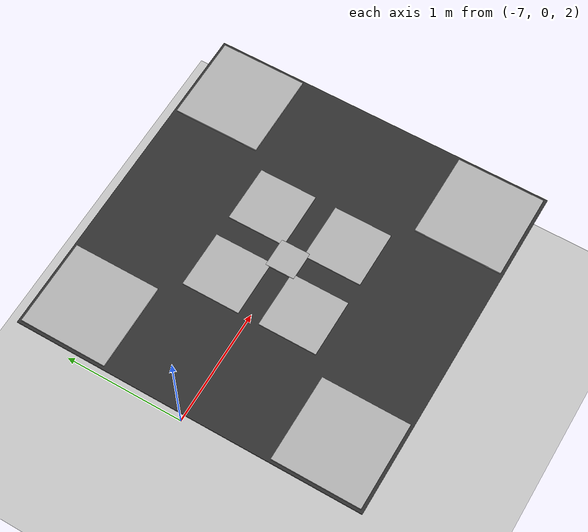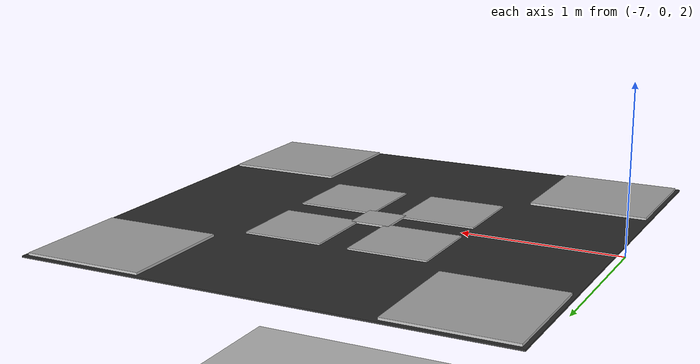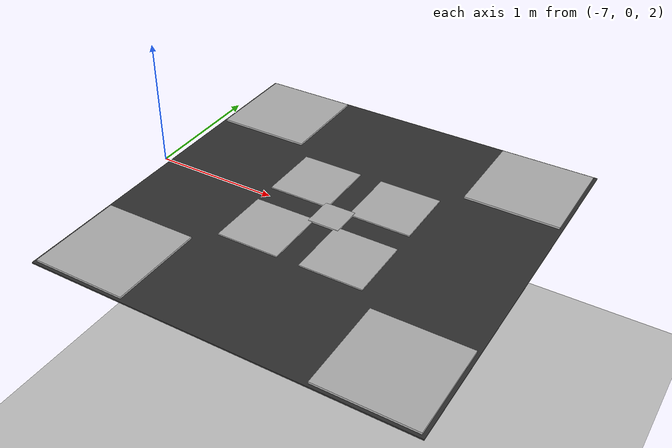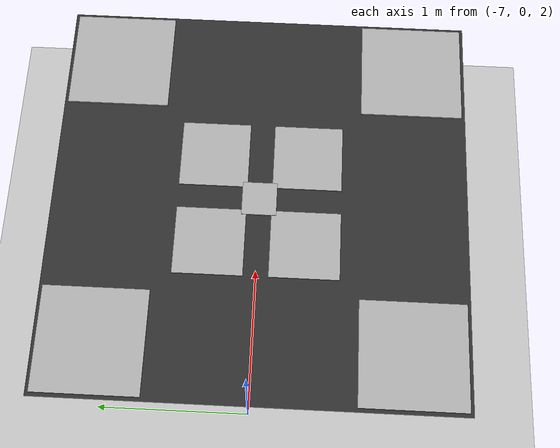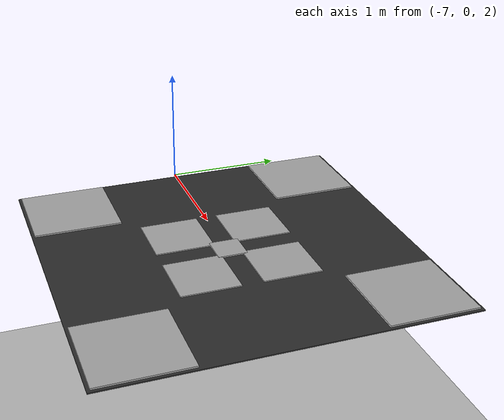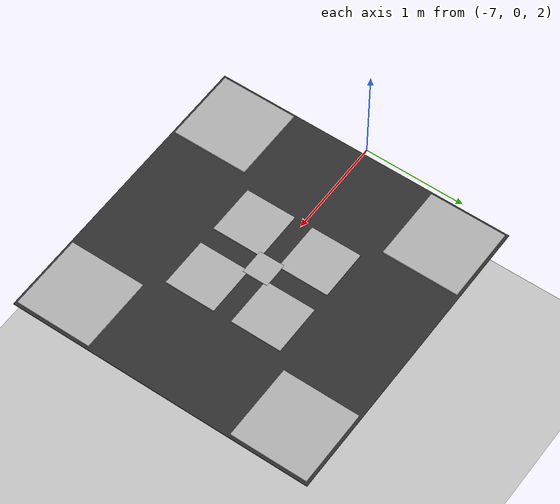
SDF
<?xml version="1.0" encoding="UTF-8"?>
<sdf version="1.9">
  <world name="windy_default">
    <physics type="ode">
      <max_step_size>0.004</max_step_size>
      <real_time_factor>1.0</real_time_factor>
      <real_time_update_rate>250</real_time_update_rate>
    </physics>
    <gravity>0 0 -9.8</gravity>
    <magnetic_field>6e-06 2.3e-05 -4.2e-05</magnetic_field>
    <atmosphere type="adiabatic"/>
    <scene>
      <grid>false</grid>
      <ambient>0.4 0.4 0.4 1</ambient>
      <background>0.7 0.7 0.7 1</background>
      <shadows>true</shadows>
    </scene>
    <model name="ground_plane">
      <static>true</static>
      <link name="link">
        <collision name="collision">
          <geometry>
            <plane>
              <normal>0 0 1</normal>
              <size>1 1</size>
            </plane>
          </geometry>
          <surface>
            <friction>
              <ode/>
            </friction>
            <bounce/>
            <contact/>
          </surface>
        </collision>
        <visual name="visual">
          <geometry>
            <plane>
              <normal>0 0 1</normal>
              <size>500 500</size>
            </plane>
          </geometry>
          <material>
            <ambient>0.8 0.8 0.8 1</ambient>
            <diffuse>0.8 0.8 0.8 1</diffuse>
            <specular>0.8 0.8 0.8 1</specular>
          </material>
        </visual>
        <pose>0 0 0 0 -0 0</pose>
        <inertial>
          <pose>0 0 0 0 -0 0</pose>
          <mass>1</mass>
          <inertia>
            <ixx>1</ixx>
            <ixy>0</ixy>
            <ixz>0</ixz>
            <iyy>1</iyy>
            <iyz>0</iyz>
            <izz>1</izz>
          </inertia>
        </inertial>
        <enable_wind>false</enable_wind>
      </link>
      <pose>0 0 0 0 -0 0</pose>
      <self_collide>false</self_collide>

    </model>
    <light name="sunUTC" type="directional">
      <pose>0 0 500 0 -0 0</pose>
      <cast_shadows>true</cast_shadows>
      <intensity>1</intensity>
      <direction>0.001 0.625 -0.78</direction>
      <diffuse>0.904 0.904 0.904 1</diffuse>
      <specular>0.271 0.271 0.271 1</specular>
      <attenuation>
        <range>2000</range>
        <linear>0</linear>
        <constant>1</constant>
        <quadratic>0</quadratic>
      </attenuation>
      <spot>
        <inner_angle>0</inner_angle>
        <outer_angle>0</outer_angle>
        <falloff>0</falloff>
      </spot>
    </light>
     <include>
    <uri>model://aruco_pad</uri>
      <name>aruco_pad</name>
      <pose>-5.45 0.0 2.0 0.0 0.0 0.0</pose>
      <plugin name="gz::sim::systems::PosePublisher" filename="libgz-sim-pose-publisher-system.so">
        <publish_link_pose>true</publish_link_pose>
          <publish_model_pose>true</publish_model_pose>
          <publish_nested_model_pose>true</publish_nested_model_pose>
          <publish_world_pose>true</publish_world_pose>
          <update_rate>30</update_rate>
      </plugin>
      <plugin
      filename="gz-sim-wind-effects-system"
      name="gz::sim::systems::WindEffects">

      <horizontal>
        <magnitude>
          <time_for_rise>1.0</time_for_rise>
          <sin>
            <amplitude_percent>0.15</amplitude_percent>
            <period>5.0</period>
          </sin>
          <noise type="gaussian">
            <mean>0</mean>
            <stddev>1.0</stddev>
          </noise>
        </magnitude>

        <direction>
          <time_for_rise>2.0</time_for_rise>
          <sin>
            <amplitude>0.5</amplitude>
            <period>5.0</period>
          </sin>
          <noise type="gaussian">
            <mean>0</mean>
            <stddev>0.05</stddev>
          </noise>
        </direction>
      </horizontal>

      <vertical>
        <time_for_rise>1.0</time_for_rise>
        <noise type="gaussian">
          <mean>0</mean>
          <stddev>0.1</stddev>
        </noise>
      </vertical>

      <force_approximation_scaling_factor>1.0</force_approximation_scaling_factor>
    </plugin>
    </include>
    <wind>
      <linear_velocity>10 10 0</linear_velocity>
    </wind>

    <spherical_coordinates>
      <surface_model>EARTH_WGS84</surface_model>
      <world_frame_orientation>ENU</world_frame_orientation>
      <latitude_deg>47.397971057728974</latitude_deg>
      <longitude_deg> 8.546163739800146</longitude_deg>
      <elevation>0</elevation>
    </spherical_coordinates>
  </world>
</sdf>

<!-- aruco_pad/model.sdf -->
<sdf version="1.9">
  <model name="aruco_pad">
    <static>true</static>
    <link name="base_link">
      <collision name="pad_collision_surface">
        <geometry>
          <box>
            <size>3.0 3.0 0.1</size>
          </box>
        </geometry>
        <surface>
          <friction>
            <ode>
              <mu>100.0</mu> <mu2>100.0</mu2> </ode>
          </friction>
          <contact>
            <ode>
              <kp>1000000.0</kp> <kd>1.0</kd> </ode>
          </contact>
        </surface>
      </collision>
      <visual name="visual_base">
        <geometry>
          <box>
            <size>3.0 3.0 0.01</size>
          </box>
        </geometry>
        <material>
          <ambient>0.2 0.2 0.2 1</ambient>
          <ambient>0.2 0.2 0.2 1</ambient>
          <diffuse>0.2 0.2 0.2 1</diffuse>
        </material>
      </visual>

      <sensor name="navsat_sensor" type="navsat">
        <always_on>1</always_on>
        <update_rate>30</update_rate>
        <noise>
            <type>gaussian</type>
            <mean>0.0</mean>
            <stddev>0.0</stddev>
          </noise>
      </sensor>
      <sensor name="imu_sensor" type="imu">
            <gz_frame_id>base_link</gz_frame_id>
            <always_on>1</always_on>
            <update_rate>250</update_rate>
            <imu>
              <angular_velocity>
                <x>
                  <noise type="gaussian">
                    <mean>0</mean>
                    <stddev>0.0003394</stddev>
                    <dynamic_bias_stddev>3.8785e-05</dynamic_bias_stddev>
                    <dynamic_bias_correlation_time>1000</dynamic_bias_correlation_time>
                  </noise>
                </x>
                <y>
                  <noise type="gaussian">
                    <mean>0</mean>
                    <stddev>0.0003394</stddev>
                    <dynamic_bias_stddev>3.8785e-05</dynamic_bias_stddev>
                    <dynamic_bias_correlation_time>1000</dynamic_bias_correlation_time>
                  </noise>
                </y>
                <z>
                  <noise type="gaussian">
                    <mean>0</mean>
                    <stddev>0.0003394</stddev>
                    <dynamic_bias_stddev>3.8785e-05</dynamic_bias_stddev>
                    <dynamic_bias_correlation_time>1000</dynamic_bias_correlation_time>
                  </noise>
                </z>
              </angular_velocity>
              <linear_acceleration>
                <x>
                  <noise type="gaussian">
                    <mean>0</mean>
                    <stddev>0.004</stddev>
                    <dynamic_bias_stddev>0.006</dynamic_bias_stddev>
                    <dynamic_bias_correlation_time>300</dynamic_bias_correlation_time>
                  </noise>
                </x>
                <y>
                  <noise type="gaussian">
                    <mean>0</mean>
                    <stddev>0.004</stddev>
                    <dynamic_bias_stddev>0.006</dynamic_bias_stddev>
                    <dynamic_bias_correlation_time>300</dynamic_bias_correlation_time>
                  </noise>
                </y>
                <z>
                  <noise type="gaussian">
                    <mean>0</mean>
                    <stddev>0.004</stddev>
                    <dynamic_bias_stddev>0.006</dynamic_bias_stddev>
                    <dynamic_bias_correlation_time>300</dynamic_bias_correlation_time>
                  </noise>
                </z>
              </linear_acceleration>
            </imu>
          </sensor>
      <sensor name="air_pressure_sensor" type="air_pressure">
        <gz_frame_id>base_link</gz_frame_id>
        <always_on>1</always_on>
        <update_rate>50</update_rate>
        <air_pressure>
          <pressure>
            <noise type="gaussian">
              <mean>0</mean>
              <stddev>0.01</stddev>
            </noise>
          </pressure>
        </air_pressure>
      </sensor>
      <sensor name="magnetometer_sensor" type="magnetometer">
        <gz_frame_id>base_link</gz_frame_id>
        <always_on>1</always_on>
        <update_rate>100</update_rate>
        <magnetometer>
          <!-- TODO: update to fix units and coordinate system when we move past Harmonic -->
          <!-- See https://github.com/gazebosim/gz-sim/pull/2460 -->
          <!-- 3mgauss RMS: NOTE: noise is in tesla but sensor reports data in gauss -->
          <!-- Noise modeled after IIS2MDC -->
          <x>
            <noise type="gaussian">
              <stddev>0.0001</stddev>
            </noise>
          </x>
          <y>
            <noise type="gaussian">
              <stddev>0.0001</stddev>
            </noise>
          </y>
          <z>
            <noise type="gaussian">
              <stddev>0.0001</stddev>
            </noise>
          </z>
        </magnetometer>
      </sensor>

    </link>
    <link name='lf_wheel_link'>
      <pose>0.15 0.16317 0.0215 0 -0 0</pose>
      <inertial>
        <pose>0 0 0 1.57079632679 0 0</pose>
        <mass>0.414</mass>
        <inertia>
          <ixx>0.00068682</ixx>
          <ixy>0</ixy>
          <ixz>0</ixz>
          <iyy>0.00068682</iyy>
          <iyz>0</iyz>
          <izz>0.00097299</izz>
        </inertia>
      </inertial>
      <velocity_decay />
    </link>
    <link name='lb_wheel_link'>
      <pose>-0.15 0.16317 0.0215 0 -0 0</pose>
      <inertial>
        <pose>0 0 0 1.57079632679 0 0</pose>
        <mass>0.414</mass>
        <inertia>
          <ixx>0.00068682</ixx>
          <ixy>0</ixy>
          <ixz>0</ixz>
          <iyy>0.00068682</iyy>
          <iyz>0</iyz>
          <izz>0.00097299</izz>
        </inertia>
      </inertial>
      <velocity_decay />
    </link>
    <link name='rf_wheel_link'>
      <pose>0.15 -0.16317 0.0215 0 -0 0</pose>
      <inertial>
        <pose>0 0 0 1.57079632679 0 0</pose>
        <mass>0.414</mass>
        <inertia>
          <ixx>0.00068682</ixx>
          <ixy>0</ixy>
          <ixz>0</ixz>
          <iyy>0.00068682</iyy>
          <iyz>0</iyz>
          <izz>0.00097299</izz>
        </inertia>
      </inertial>
      <velocity_decay />
    </link>
    <link name='rb_wheel_link'>
      <pose>-0.15 -0.16317 0.0215 0 -0 0</pose>
      <inertial>
        <pose>0 0 0 1.57079632679 0 0</pose>
        <mass>0.414</mass>
        <inertia>
          <ixx>0.00068682</ixx>
          <ixy>0</ixy>
          <ixz>0</ixz>
          <iyy>0.00068682</iyy>
          <iyz>0</iyz>
          <izz>0.00097299</izz>
        </inertia>
      </inertial>
      <velocity_decay />
    </link>
    <joint name='motor_0' type='revolute'>
      <child>lf_wheel_link</child>
      <parent>base_link</parent>
      <axis>
        <xyz>0 1 0</xyz>
        <limit>
          <lower>-1e+16</lower>
          <upper>1e+16</upper>
        </limit>
        <dynamics>
          <spring_reference>0</spring_reference>
          <spring_stiffness>0</spring_stiffness>
        </dynamics>
        <use_parent_model_frame>1</use_parent_model_frame>
      </axis>
    </joint>
    <joint name='motor_1' type='revolute'>
      <child>lb_wheel_link</child>
      <parent>base_link</parent>
      <axis>
        <xyz>0 1 0</xyz>
        <limit>
          <lower>-1e+16</lower>
          <upper>1e+16</upper>
        </limit>
        <dynamics>
          <spring_reference>0</spring_reference>
          <spring_stiffness>0</spring_stiffness>
        </dynamics>
        <use_parent_model_frame>1</use_parent_model_frame>
      </axis>
    </joint>
    <joint name='motor_2' type='revolute'>
      <child>rf_wheel_link</child>
      <parent>base_link</parent>
      <axis>
        <xyz>0 1 0</xyz>
        <limit>
          <lower>-1e+16</lower>
          <upper>1e+16</upper>
        </limit>
        <dynamics>
          <spring_reference>0</spring_reference>
          <spring_stiffness>0</spring_stiffness>
        </dynamics>
        <use_parent_model_frame>1</use_parent_model_frame>
      </axis>
    </joint>
    <joint name='motor_3' type='revolute'>
      <child>rb_wheel_link</child>
      <parent>base_link</parent>
      <axis>
        <xyz>0 1 0</xyz>
        <limit>
          <lower>-1e+16</lower>
          <upper>1e+16</upper>
        </limit>
        <dynamics>
          <spring_reference>0</spring_reference>
          <spring_stiffness>0</spring_stiffness>
        </dynamics>
        <use_parent_model_frame>1</use_parent_model_frame>
      </axis>
    </joint>

    <include>
      <uri>model://aruco_sticker1</uri>
      <name>marker_1</name>
      <pose>1.1 1.1 0.01 0 0 0</pose>
    </include>
    <include>
      <uri>model://aruco_sticker2</uri>
      <name>marker_2</name>
      <pose>1.1 -1.1 0.01 0 0 0</pose>
    </include>
    <include>
      <uri>model://aruco_sticker3</uri>
      <name>marker_3</name>
      <pose>-1.1 1.1 0.01 0 0 0</pose>
    </include>
    <include>
      <uri>model://aruco_sticker4</uri>
      <name>marker_4</name>
      <pose>-1.1 -1.1 0.01 0 0 0</pose>
    </include>

    <include>
      <uri>model://aruco_sticker5</uri>
      <name>marker_5</name>
      <pose>0.34 0.34 0.005 0 0 0</pose>
    </include>
    <include>
      <uri>model://aruco_sticker6</uri>
      <name>marker_6</name>
      <pose>0.34 -0.34 0.005 0 0 0</pose>
    </include>
    <include>
      <uri>model://aruco_sticker7</uri>
      <name>marker_7</name>
      <pose>-0.34 0.34 0.005 0 0 0</pose>
    </include>
    <include>
      <uri>model://aruco_sticker8</uri>
      <name>marker_8</name>
      <pose>-0.34 -0.34 0.005 0 0 0</pose>
    </include>

    <include>
      <uri>model://aruco_sticker9</uri>
      <name>marker_9</name>
      <pose>0 0 0.012 0 0 0</pose>
    </include>
    <!-- 1. The Sensor: Detects the touch -->
    <plugin
      filename="libtouch_plugin_mod.so"
      name="gz::sim::systems::TouchPluginMod">
      <target>x500</target>
      <namespace>pad</namespace>
      <link_name>base_link</link_name>
      <time>0.1</time>
      <enabled>true</enabled>
      <create_contact_sensor_for_collision>true</create_contact_sensor_for_collision>
    </plugin>

    <!-- 2. The Magnet: Creates the joint -->
    <plugin
      filename="libdetachable_joint_mod.so"
      name="gz::sim::systems::DetachableJointMod">
      <parent_link>base_link</parent_link>
      <child_model>x500_mono_cam_down_0</child_model>
      <child_link>base_link</child_link>
      <attach_topic>/pad/touched</attach_topic>
      <topic>/pad/dettach</topic>
      <detach_topic>/pad/dettach</detach_topic>
    </plugin>

   <plugin
        filename="libwave_motion_plugin2.so"
        name="gz::sim::systems::WavePlatformPlugin2">

        <surge_a1>1.0</surge_a1>
        <surge_p1>12.0</surge_p1>

        <heave_a1>0.5</heave_a1>
        <heave_p1>30</heave_p1>

        <heave_a2>0.2</heave_a2>
        <heave_p2>10.0</heave_p2>

        <heave_a3>1.0</heave_a3>
        <heave_p3>4.0</heave_p3>

        <roll_a1>11.0</roll_a1>
        <pitch_a1>3.1</pitch_a1>
        <yaw_a1>2.14</yaw_a1>

      </plugin>

    <plugin filename="gz-sim-joint-controller-system" name="gz::sim::systems::JointController">
      <joint_name>motor_0</joint_name>
      <sub_topic>command/motor_speed</sub_topic>
      <use_actuator_msg>true</use_actuator_msg>
      <actuator_number>1</actuator_number>
      <p_gain>10.0</p_gain>
    </plugin>
    <plugin filename="gz-sim-joint-controller-system" name="gz::sim::systems::JointController">
      <joint_name>motor_1</joint_name>
      <sub_topic>command/motor_speed</sub_topic>
      <use_actuator_msg>true</use_actuator_msg>
      <actuator_number>1</actuator_number>
      <p_gain>10.0</p_gain>
    </plugin>
    <plugin filename="gz-sim-joint-controller-system" name="gz::sim::systems::JointController">
      <joint_name>motor_2</joint_name>
      <sub_topic>command/motor_speed</sub_topic>
      <use_actuator_msg>true</use_actuator_msg>
      <actuator_number>0</actuator_number>
      <p_gain>10.0</p_gain>
    </plugin>
    <plugin filename="gz-sim-joint-controller-system" name="gz::sim::systems::JointController">
      <joint_name>motor_3</joint_name>
      <sub_topic>command/motor_speed</sub_topic>
      <use_actuator_msg>true</use_actuator_msg>
      <actuator_number>0</actuator_number>
      <p_gain>10.0</p_gain>
    </plugin>
    <plugin
      filename="gz-sim-joint-state-publisher-system"
      name="gz::sim::systems::JointStatePublisher">
      <joint_name>motor_0</joint_name>
      <joint_name>motor_1</joint_name>
      <joint_name>motor_2</joint_name>
      <joint_name>motor_3</joint_name>
    </plugin>

  </model>
</sdf>

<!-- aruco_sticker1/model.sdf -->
<sdf version="1.5">

 <model name='aruco_sticker1'>
      <pose>0 0 0 0 0 0</pose>
      <link name='link'>
        <inertial>
          <mass>1</mass>
          <inertia>
            <ixx>0.166667</ixx>
            <ixy>0</ixy>
            <ixz>0</ixz>
            <iyy>0.166667</iyy>
            <iyz>0</iyz>
            <izz>0.0166667</izz>
          </inertia>
          <pose>0 0 0 0 -0 0</pose>
        </inertial>
        <gravity>0</gravity>
        <kinematic>true</kinematic>
        <visual name='aruco_box_mesh'>
          <geometry>
            <mesh>
                <uri>model://aruco_sticker1/model.dae</uri>
                <scale>0.375 0.375 0.01</scale>
            </mesh>
          </geometry>
        </visual>
        <self_collide>0</self_collide>
        <enable_wind>0</enable_wind>
        <kinematic>0</kinematic>
      </link>
    </model>
</sdf>

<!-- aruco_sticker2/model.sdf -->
<sdf version="1.5">

 <model name='aruco_sticker2'>
      <pose>0 0 0 0 0 0</pose>
      <link name='link'>
        <inertial>
          <mass>1</mass>
          <inertia>
            <ixx>0.166667</ixx>
            <ixy>0</ixy>
            <ixz>0</ixz>
            <iyy>0.166667</iyy>
            <iyz>0</iyz>
            <izz>0.0166667</izz>
          </inertia>
          <pose>0 0 0 0 -0 0</pose>
        </inertial>
        <gravity>0</gravity>
        <kinematic>true</kinematic>
        <visual name='aruco_box_mesh'>
          <geometry>
            <mesh>
                <uri>model://aruco_sticker2/model.dae</uri>
                <scale>0.375 0.375 0.01</scale>
            </mesh>
          </geometry>
        </visual>
        <self_collide>0</self_collide>
        <enable_wind>0</enable_wind>
        <kinematic>0</kinematic>
      </link>
    </model>
</sdf>

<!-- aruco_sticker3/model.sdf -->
<sdf version="1.5">

 <model name='aruco_sticker3'>
      <pose>0 0 0 0 0 0</pose>
      <link name='link'>
        <inertial>
          <mass>1</mass>
          <inertia>
            <ixx>0.166667</ixx>
            <ixy>0</ixy>
            <ixz>0</ixz>
            <iyy>0.166667</iyy>
            <iyz>0</iyz>
            <izz>0.0166667</izz>
          </inertia>
          <pose>0 0 0 0 -0 0</pose>
        </inertial>
        <gravity>0</gravity>
        <kinematic>true</kinematic>
        <visual name='aruco_box_mesh'>
          <geometry>
            <mesh>
                <uri>model://aruco_sticker3/model.dae</uri>
                <scale>0.375 0.375 0.01</scale>
            </mesh>
          </geometry>
        </visual>
        <self_collide>0</self_collide>
        <enable_wind>0</enable_wind>
        <kinematic>0</kinematic>
      </link>
    </model>
</sdf>

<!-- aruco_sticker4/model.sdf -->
<sdf version="1.5">

 <model name='aruco_sticker4'>
      <pose>0 0 0 0 0 0</pose>
      <link name='link'>
        <inertial>
          <mass>1</mass>
          <inertia>
            <ixx>0.166667</ixx>
            <ixy>0</ixy>
            <ixz>0</ixz>
            <iyy>0.166667</iyy>
            <iyz>0</iyz>
            <izz>0.0166667</izz>
          </inertia>
          <pose>0 0 0 0 -0 0</pose>
        </inertial>
        <gravity>0</gravity>
        <kinematic>true</kinematic>
        <visual name='aruco_box_mesh'>
          <geometry>
            <mesh>
                <uri>model://aruco_sticker4/model.dae</uri>
                <scale>0.375 0.375 0.01</scale>
            </mesh>
          </geometry>
        </visual>
        <self_collide>0</self_collide>
        <enable_wind>0</enable_wind>
        <kinematic>0</kinematic>
      </link>
    </model>
</sdf>

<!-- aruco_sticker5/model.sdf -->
<sdf version="1.5">

 <model name='aruco_sticker5'>
      <pose>0 0 0 0 0 0</pose>
      <link name='link'>
        <inertial>
          <mass>1</mass>
          <inertia>
            <ixx>0.166667</ixx>
            <ixy>0</ixy>
            <ixz>0</ixz>
            <iyy>0.166667</iyy>
            <iyz>0</iyz>
            <izz>0.0166667</izz>
          </inertia>
          <pose>0 0 0 0 -0 0</pose>
        </inertial>
        <gravity>0</gravity>
        <kinematic>true</kinematic>
        <visual name='aruco_box_mesh'>
          <geometry>
            <mesh>
                <uri>model://aruco_sticker5/model.dae</uri>
                <scale>0.25 0.25 0.01</scale>
            </mesh>
          </geometry>
        </visual>
        <self_collide>0</self_collide>
        <enable_wind>0</enable_wind>
        <kinematic>0</kinematic>
      </link>
    </model>
</sdf>

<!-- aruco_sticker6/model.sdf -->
<sdf version="1.5">

 <model name='aruco_sticker6'>
      <pose>0 0 0 0 0 0</pose>
      <link name='link'>
        <inertial>
          <mass>1</mass>
          <inertia>
            <ixx>0.166667</ixx>
            <ixy>0</ixy>
            <ixz>0</ixz>
            <iyy>0.166667</iyy>
            <iyz>0</iyz>
            <izz>0.0166667</izz>
          </inertia>
          <pose>0 0 0 0 -0 0</pose>
        </inertial>
        <gravity>0</gravity>
        <kinematic>true</kinematic>
        <visual name='aruco_box_mesh'>
          <geometry>
            <mesh>
                <uri>model://aruco_sticker6/model.dae</uri>
                <scale>0.25 0.25 0.01</scale>
            </mesh>
          </geometry>
        </visual>
        <self_collide>0</self_collide>
        <enable_wind>0</enable_wind>
        <kinematic>0</kinematic>
      </link>
    </model>
</sdf>

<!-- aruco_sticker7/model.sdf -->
<sdf version="1.5">

 <model name='aruco_sticker7'>
      <pose>0 0 0 0 0 0</pose>
      <link name='link'>
        <inertial>
          <mass>1</mass>
          <inertia>
            <ixx>0.166667</ixx>
            <ixy>0</ixy>
            <ixz>0</ixz>
            <iyy>0.166667</iyy>
            <iyz>0</iyz>
            <izz>0.0166667</izz>
          </inertia>
          <pose>0 0 0 0 -0 0</pose>
        </inertial>
        <gravity>0</gravity>
        <kinematic>true</kinematic>
        <visual name='aruco_box_mesh'>
          <geometry>
            <mesh>
                <uri>model://aruco_sticker7/model.dae</uri>
                <scale>0.25 0.25 0.01</scale>
            </mesh>
          </geometry>
        </visual>
        <self_collide>0</self_collide>
        <enable_wind>0</enable_wind>
        <kinematic>0</kinematic>
      </link>
    </model>
</sdf>

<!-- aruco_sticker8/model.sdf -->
<sdf version="1.5">

 <model name='aruco_sticker8'>
      <pose>0 0 0 0 0 0</pose>
      <link name='link'>
        <inertial>
          <mass>1</mass>
          <inertia>
            <ixx>0.166667</ixx>
            <ixy>0</ixy>
            <ixz>0</ixz>
            <iyy>0.166667</iyy>
            <iyz>0</iyz>
            <izz>0.0166667</izz>
          </inertia>
          <pose>0 0 0 0 -0 0</pose>
        </inertial>
        <gravity>0</gravity>
        <kinematic>true</kinematic>
        <visual name='aruco_box_mesh'>
          <geometry>
            <mesh>
                <uri>model://aruco_sticker8/model.dae</uri>
                <scale>0.25 0.25 0.01</scale>
            </mesh>
          </geometry>
        </visual>
        <self_collide>0</self_collide>
        <enable_wind>0</enable_wind>
        <kinematic>0</kinematic>
      </link>
    </model>
</sdf>

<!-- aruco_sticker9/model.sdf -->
<sdf version="1.5">

 <model name='aruco_sticker9'>
      <pose>0 0 0 0 0 0</pose>
      <link name='link'>
        <inertial>
          <mass>1</mass>
          <inertia>
            <ixx>0.166667</ixx>
            <ixy>0</ixy>
            <ixz>0</ixz>
            <iyy>0.166667</iyy>
            <iyz>0</iyz>
            <izz>0.0166667</izz>
          </inertia>
          <pose>0 0 0 0 -0 0</pose>
        </inertial>
        <gravity>0</gravity>
        <kinematic>true</kinematic>
        <visual name='aruco_box_mesh'>
          <geometry>
            <mesh>
                <uri>model://aruco_sticker9/model.dae</uri>
                <scale>0.125 0.125 0.00625</scale>
            </mesh>
          </geometry>
        </visual>
        <self_collide>0</self_collide>
        <enable_wind>0</enable_wind>
        <kinematic>0</kinematic>
      </link>
    </model>
</sdf>
